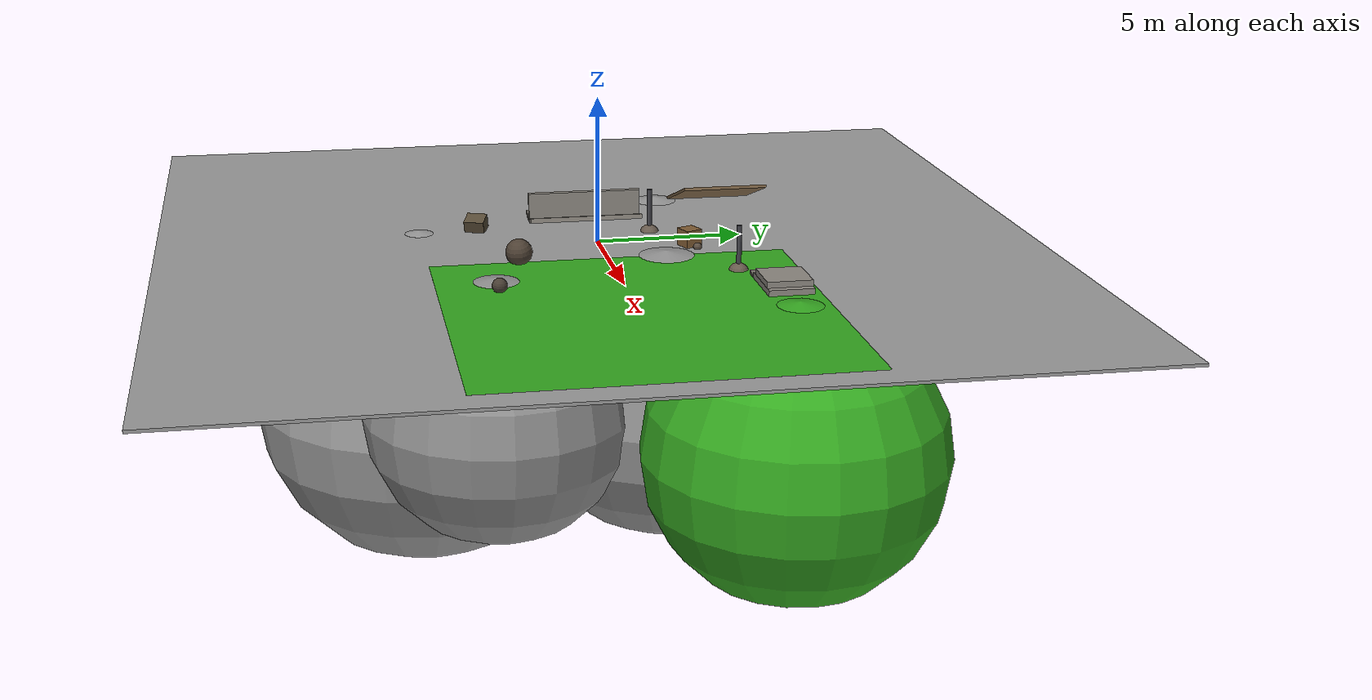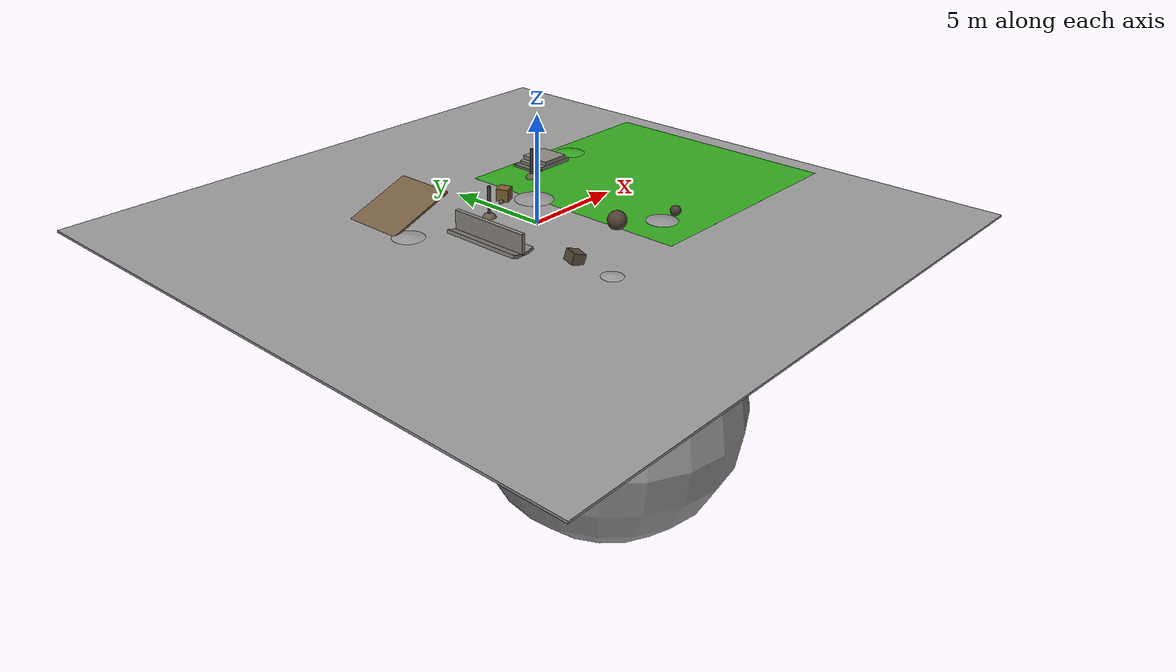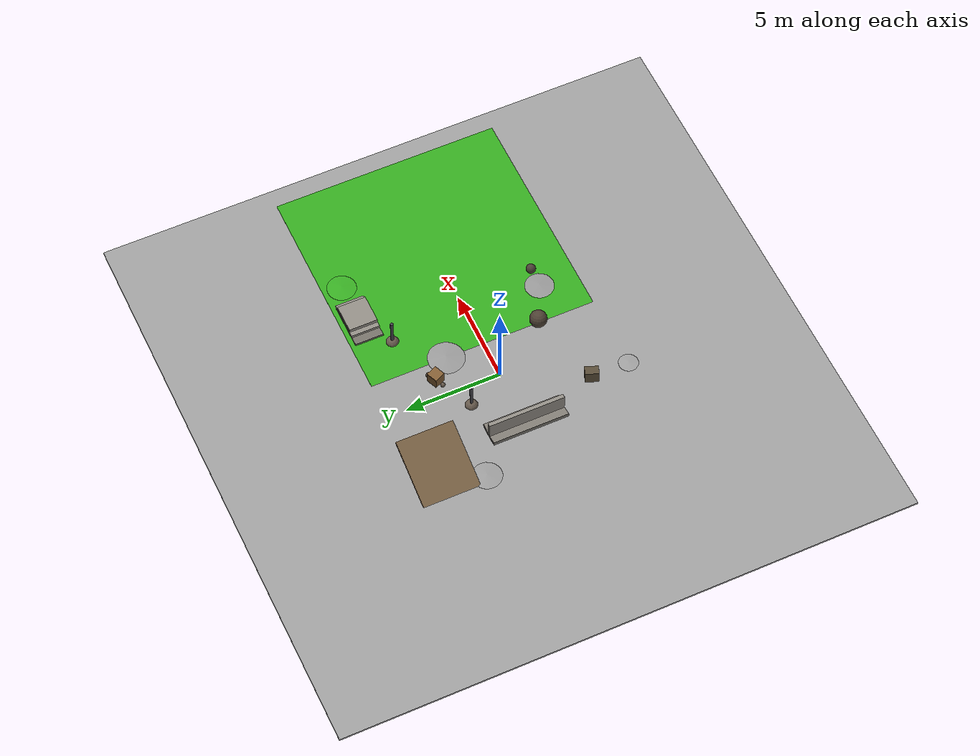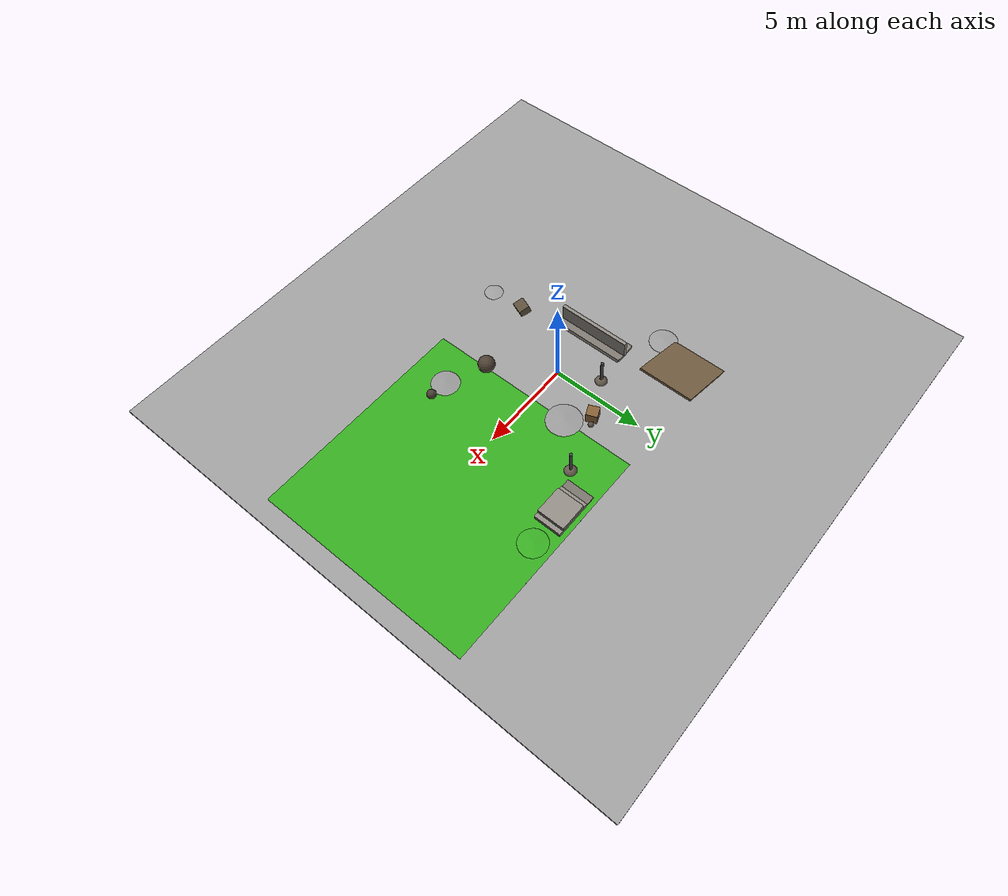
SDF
<sdf version="1.6">
 <world name="outdoor_semantic_benchmark">
  <light name="sun" type="directional">
   <pose>0 0 10 0 0 0</pose>
   <diffuse>0.9 0.9 0.9 1</diffuse>
   <specular>0.3 0.3 0.3 1</specular>
   <direction>-0.5 0.1 -0.9</direction>
  </light>
  <physics type="ode">
   <real_time_update_rate>1000</real_time_update_rate>
   <max_step_size>0.001</max_step_size>
  </physics>
  <model name="ground_concrete">
   <static>true</static>
   <pose>0 0 -0.05 0 0 0</pose>
   <link name="link">
    <collision name="col"><geometry><box><size>30 30 0.1</size></box></geometry></collision>
    <visual name="vis">
     <geometry><box><size>30 30 0.1</size></box></geometry>
     <material><ambient>0.55 0.55 0.55 1</ambient><diffuse>0.60 0.60 0.60 1</diffuse></material>
    </visual>
   </link>
  </model>
  <model name="grass_area">
   <static>true</static>
   <pose>8 0 -0.019 0 0 0</pose>
   <link name="link">
    <collision name="col"><geometry><box><size>12 12 0.04</size></box></geometry></collision>
    <visual name="vis">
     <geometry><box><size>12 12 0.04</size></box></geometry>
     <material><ambient>0.15 0.55 0.10 1</ambient><diffuse>0.20 0.65 0.12 1</diffuse></material>
    </visual>
   </link>
  </model>
  <model name="terrain_ripple_1">
   <static>true</static>
   <pose>2 2 -4.85 0 0 0</pose>
   <link name="link">
    <collision name="col"><geometry><sphere><radius>5.0</radius></sphere></geometry></collision>
    <visual name="vis">
     <geometry><sphere><radius>5.0</radius></sphere></geometry>
     <material><ambient>0.53 0.53 0.53 1</ambient><diffuse>0.58 0.58 0.58 1</diffuse></material>
    </visual>
   </link>
  </model>
  <model name="terrain_ripple_2">
   <static>true</static>
   <pose>-5 3 -3.88 0 0 0</pose>
   <link name="link">
    <collision name="col"><geometry><sphere><radius>4.0</radius></sphere></geometry></collision>
    <visual name="vis">
     <geometry><sphere><radius>4.0</radius></sphere></geometry>
     <material><ambient>0.54 0.54 0.54 1</ambient><diffuse>0.59 0.59 0.59 1</diffuse></material>
    </visual>
   </link>
  </model>
  <model name="terrain_ripple_3">
   <static>true</static>
   <pose>4 -4 -4.38 0 0 0</pose>
   <link name="link">
    <collision name="col"><geometry><sphere><radius>4.5</radius></sphere></geometry></collision>
    <visual name="vis">
     <geometry><sphere><radius>4.5</radius></sphere></geometry>
     <material><ambient>0.52 0.52 0.52 1</ambient><diffuse>0.57 0.57 0.57 1</diffuse></material>
    </visual>
   </link>
  </model>
  <model name="terrain_ripple_4">
   <static>true</static>
   <pose>-2 -6 -5.92 0 0 0</pose>
   <link name="link">
    <collision name="col"><geometry><sphere><radius>6.0</radius></sphere></geometry></collision>
    <visual name="vis">
     <geometry><sphere><radius>6.0</radius></sphere></geometry>
     <material><ambient>0.55 0.55 0.55 1</ambient><diffuse>0.60 0.60 0.60 1</diffuse></material>
    </visual>
   </link>
  </model>
  <model name="terrain_ripple_5">
   <static>true</static>
   <pose>8 5 -4.88 0 0 0</pose>
   <link name="link">
    <collision name="col"><geometry><sphere><radius>5.0</radius></sphere></geometry></collision>
    <visual name="vis">
     <geometry><sphere><radius>5.0</radius></sphere></geometry>
     <material><ambient>0.16 0.56 0.11 1</ambient><diffuse>0.21 0.66 0.13 1</diffuse></material>
    </visual>
   </link>
  </model>
  <model name="ramp">
   <static>true</static>
   <pose>-4 5 0.45 0 -0.35 0</pose>
   <link name="link">
    <collision name="col"><geometry><box><size>4 3 0.1</size></box></geometry></collision>
    <visual name="vis">
     <geometry><box><size>4 3 0.1</size></box></geometry>
     <material><ambient>0.40 0.32 0.22 1</ambient><diffuse>0.45 0.36 0.25 1</diffuse></material>
    </visual>
   </link>
  </model>
  <model name="rock_1">
   <static>true</static>
   <pose>2 -3 0.35 0.2 0.1 0.5</pose>
   <link name="link">
    <collision name="col"><geometry><sphere><radius>0.45</radius></sphere></geometry></collision>
    <visual name="vis">
     <geometry><sphere><radius>0.45</radius></sphere></geometry>
     <material><ambient>0.30 0.25 0.20 1</ambient></material>
    </visual>
   </link>
  </model>
  <model name="rock_2">
   <static>true</static>
   <pose>-2 -4 0.25 0.3 0 1.2</pose>
   <link name="link">
    <collision name="col"><geometry><box><size>0.7 0.6 0.5</size></box></geometry></collision>
    <visual name="vis">
     <geometry><box><size>0.7 0.6 0.5</size></box></geometry>
     <material><ambient>0.35 0.30 0.22 1</ambient></material>
    </visual>
   </link>
  </model>
  <model name="rock_3">
   <static>true</static>
   <pose>5 -4 0.18 0.1 0.2 0.8</pose>
   <link name="link">
    <collision name="col"><geometry><sphere><radius>0.25</radius></sphere></geometry></collision>
    <visual name="vis">
     <geometry><sphere><radius>0.25</radius></sphere></geometry>
     <material><ambient>0.28 0.24 0.20 1</ambient></material>
    </visual>
   </link>
  </model>
  <model name="wall_1">
   <static>true</static>
   <pose>-3 0 0.5 0 0 0</pose>
   <link name="link">
    <collision name="col"><geometry><box><size>0.2 4 1.0</size></box></geometry></collision>
    <visual name="vis">
     <geometry><box><size>0.2 4 1.0</size></box></geometry>
     <material><ambient>0.50 0.48 0.45 1</ambient><diffuse>0.55 0.53 0.50 1</diffuse></material>
    </visual>
   </link>
  </model>
  <model name="wall_1_slope_left">
   <static>true</static>
   <pose>-3.32 0 0.08 0 0.25 0</pose>
   <link name="link">
    <collision name="col"><geometry><box><size>0.6 4 0.16</size></box></geometry></collision>
    <visual name="vis">
     <geometry><box><size>0.6 4 0.16</size></box></geometry>
     <material><ambient>0.45 0.43 0.40 1</ambient><diffuse>0.50 0.48 0.45 1</diffuse></material>
    </visual>
   </link>
  </model>
  <model name="wall_1_slope_right">
   <static>true</static>
   <pose>-2.68 0 0.08 0 -0.25 0</pose>
   <link name="link">
    <collision name="col"><geometry><box><size>0.6 4 0.16</size></box></geometry></collision>
    <visual name="vis">
     <geometry><box><size>0.6 4 0.16</size></box></geometry>
     <material><ambient>0.45 0.43 0.40 1</ambient><diffuse>0.50 0.48 0.45 1</diffuse></material>
    </visual>
   </link>
  </model>
  <model name="box_1">
   <static>true</static>
   <pose>1 3 0.3 0 0 0.4</pose>
   <link name="link">
    <collision name="col"><geometry><box><size>0.6 0.6 0.6</size></box></geometry></collision>
    <visual name="vis">
     <geometry><box><size>0.6 0.6 0.6</size></box></geometry>
     <material><ambient>0.45 0.32 0.18 1</ambient><diffuse>0.50 0.36 0.20 1</diffuse></material>
    </visual>
   </link>
  </model>
  <model name="box_1_gravel_1">
   <static>true</static>
   <pose>1.4 3.2 0.05 0 0 0</pose>
   <link name="link">
    <collision name="col"><geometry><sphere><radius>0.15</radius></sphere></geometry></collision>
    <visual name="vis">
     <geometry><sphere><radius>0.15</radius></sphere></geometry>
     <material><ambient>0.35 0.30 0.25 1</ambient></material>
    </visual>
   </link>
  </model>
  <model name="box_1_gravel_2">
   <static>true</static>
   <pose>0.6 2.8 0.04 0 0 0</pose>
   <link name="link">
    <collision name="col"><geometry><sphere><radius>0.12</radius></sphere></geometry></collision>
    <visual name="vis">
     <geometry><sphere><radius>0.12</radius></sphere></geometry>
     <material><ambient>0.38 0.33 0.28 1</ambient></material>
    </visual>
   </link>
  </model>
  <model name="pole_1">
   <static>true</static>
   <pose>-1 2 0.75 0 0 0</pose>
   <link name="link">
    <collision name="col">
     <geometry><cylinder><radius>0.08</radius><length>1.5</length></cylinder></geometry>
    </collision>
    <visual name="vis">
     <geometry><cylinder><radius>0.08</radius><length>1.5</length></cylinder></geometry>
     <material><ambient>0.20 0.20 0.22 1</ambient><diffuse>0.25 0.25 0.28 1</diffuse></material>
    </visual>
   </link>
  </model>
  <model name="pole_1_mound">
   <static>true</static>
   <pose>-1 2 -0.12 0 0 0</pose>
   <link name="link">
    <collision name="col"><geometry><sphere><radius>0.35</radius></sphere></geometry></collision>
    <visual name="vis">
     <geometry><sphere><radius>0.35</radius></sphere></geometry>
     <material><ambient>0.40 0.35 0.30 1</ambient></material>
    </visual>
   </link>
  </model>
  <model name="pole_2">
   <static>true</static>
   <pose>4 4 0.75 0 0 0</pose>
   <link name="link">
    <collision name="col">
     <geometry><cylinder><radius>0.08</radius><length>1.5</length></cylinder></geometry>
    </collision>
    <visual name="vis">
     <geometry><cylinder><radius>0.08</radius><length>1.5</length></cylinder></geometry>
     <material><ambient>0.20 0.20 0.22 1</ambient><diffuse>0.25 0.25 0.28 1</diffuse></material>
    </visual>
   </link>
  </model>
  <model name="pole_2_mound">
   <static>true</static>
   <pose>4 4 -0.12 0 0 0</pose>
   <link name="link">
    <collision name="col"><geometry><sphere><radius>0.35</radius></sphere></geometry></collision>
    <visual name="vis">
     <geometry><sphere><radius>0.35</radius></sphere></geometry>
     <material><ambient>0.40 0.35 0.30 1</ambient></material>
    </visual>
   </link>
  </model>
  <model name="step_1">
   <static>true</static>
   <pose>6 5 0.1 0 0 0</pose>
   <link name="link">
    <collision name="col"><geometry><box><size>2 1.5 0.2</size></box></geometry></collision>
    <visual name="vis">
     <geometry><box><size>2 1.5 0.2</size></box></geometry>
     <material><ambient>0.50 0.48 0.45 1</ambient><diffuse>0.55 0.53 0.50 1</diffuse></material>
    </visual>
   </link>
  </model>
  <model name="step_2">
   <static>true</static>
   <pose>6 5 0.3 0 0 0</pose>
   <link name="link">
    <collision name="col"><geometry><box><size>1.5 1.5 0.2</size></box></geometry></collision>
    <visual name="vis">
     <geometry><box><size>1.5 1.5 0.2</size></box></geometry>
     <material><ambient>0.50 0.48 0.45 1</ambient><diffuse>0.55 0.53 0.50 1</diffuse></material>
    </visual>
   </link>
  </model>
  <model name="step_transition_slope">
   <static>true</static>
   <pose>4.75 5 0.04 0 0.16 0</pose>
   <link name="link">
    <collision name="col"><geometry><box><size>0.5 1.5 0.1</size></box></geometry></collision>
    <visual name="vis">
     <geometry><box><size>0.5 1.5 0.1</size></box></geometry>
     <material><ambient>0.45 0.43 0.40 1</ambient></material>
    </visual>
   </link>
  </model>
  <model name="semantic_person_lidar_proxy">
   <static>true</static>
   <pose>6 0 0.85 0 0 0</pose>
   <link name="link">
    <collision name="person_collision">
     <geometry><cylinder><radius>0.25</radius><length>1.7</length></cylinder></geometry>
    </collision>
   </link>
  </model>
 </world>
</sdf>
